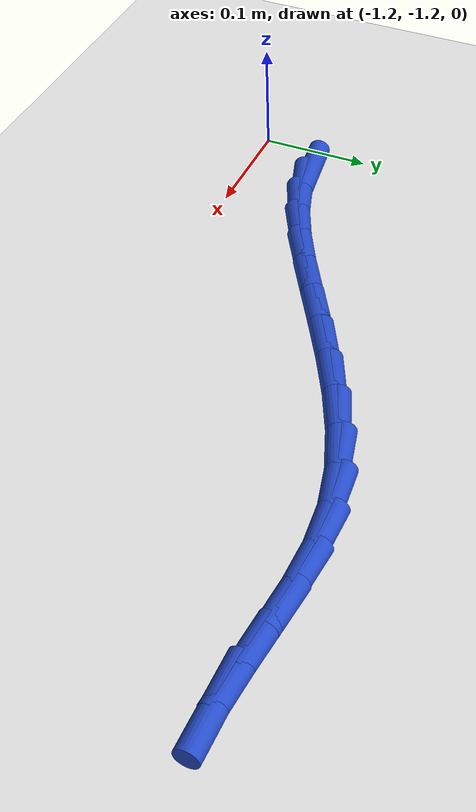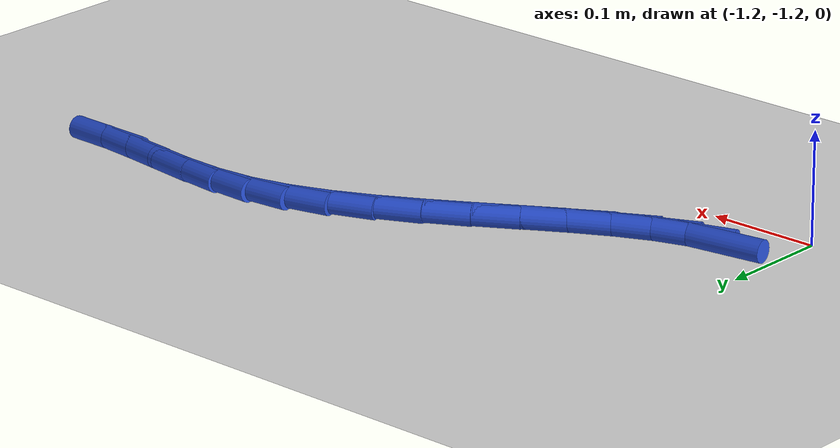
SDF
<sdf version="1.6">
 <world name="default">
  <model name="ground_plane">
   <static>1</static>
   <link name="link">
    <collision name="collision">
     <geometry><plane><normal>0 0 1</normal><size>100 100</size></plane></geometry>
     <surface><friction><ode><mu>100</mu><mu2>50</mu2></ode></friction></surface>
    </collision>
    <visual name="visual">
     <cast_shadows>0</cast_shadows>
     <geometry><plane><normal>0 0 1</normal><size>100 100</size></plane></geometry>
     <material>
      <script><uri>file://media/materials/scripts/gazebo.material</uri><name>Gazebo/WhiteGlow</name></script>
     </material>
    </visual>
   </link>
  </model>
  <model name="line">
   <link name="link_149">
    <pose>-1.1542933924334093 -1.1378271474269215 0.01 0 1.57 0.1392775598056084</pose>
    <collision name="collision">
     <geometry><cylinder><radius>0.01</radius><length>0.08</length></cylinder></geometry>
    </collision>
    <visual name="visual">
     <material>
      <script><name>Gazebo/Blue</name><uri>file://media/materials/scripts/gazebo.material</uri></script>
     </material>
     <geometry><cylinder><radius>0.01</radius><length>0.08</length></cylinder></geometry>
    </visual>
   </link>
   <link name="link_150">
    <pose>-1.1259524986673595 -1.1338541740549366 0.01 0 1.57 0.3168340715386531</pose>
    <collision name="collision">
     <geometry><cylinder><radius>0.01</radius><length>0.08</length></cylinder></geometry>
    </collision>
    <visual name="visual">
     <material>
      <script><name>Gazebo/Blue</name><uri>file://media/materials/scripts/gazebo.material</uri></script>
     </material>
     <geometry><cylinder><radius>0.01</radius><length>0.08</length></cylinder></geometry>
    </visual>
   </link>
   <link name="link_151">
    <pose>-1.096124837135707 -1.1240742962422663 0.01 0 1.57 0.4329502543316481</pose>
    <collision name="collision">
     <geometry><cylinder><radius>0.01</radius><length>0.08</length></cylinder></geometry>
    </collision>
    <visual name="visual">
     <material>
      <script><name>Gazebo/Blue</name><uri>file://media/materials/scripts/gazebo.material</uri></script>
     </material>
     <geometry><cylinder><radius>0.01</radius><length>0.08</length></cylinder></geometry>
    </visual>
   </link>
   <link name="link_152">
    <pose>-1.0649669193592286 -1.1096732106272074 0.01 0 1.57 0.5041289269134812</pose>
    <collision name="collision">
     <geometry><cylinder><radius>0.01</radius><length>0.08</length></cylinder></geometry>
    </collision>
    <visual name="visual">
     <material>
      <script><name>Gazebo/Blue</name><uri>file://media/materials/scripts/gazebo.material</uri></script>
     </material>
     <geometry><cylinder><radius>0.01</radius><length>0.08</length></cylinder></geometry>
    </visual>
   </link>
   <link name="link_153">
    <pose>-1.0326352568587005 -1.0918366138480582 0.01 0 1.57 0.5421171334897387</pose>
    <collision name="collision">
     <geometry><cylinder><radius>0.01</radius><length>0.08</length></cylinder></geometry>
    </collision>
    <visual name="visual">
     <material>
      <script><name>Gazebo/Blue</name><uri>file://media/materials/scripts/gazebo.material</uri></script>
     </material>
     <geometry><cylinder><radius>0.01</radius><length>0.08</length></cylinder></geometry>
    </visual>
   </link>
   <link name="link_154">
    <pose>-0.9992863611549005 -1.0717502025431171 0.01 0 1.57 0.5537398132104734</pose>
    <collision name="collision">
     <geometry><cylinder><radius>0.01</radius><length>0.08</length></cylinder></geometry>
    </collision>
    <visual name="visual">
     <material>
      <script><name>Gazebo/Blue</name><uri>file://media/materials/scripts/gazebo.material</uri></script>
     </material>
     <geometry><cylinder><radius>0.01</radius><length>0.08</length></cylinder></geometry>
    </visual>
   </link>
   <link name="link_155">
    <pose>-0.9650767437686038 -1.050599673350681 0.01 0 1.57 0.5421163612613489</pose>
    <collision name="collision">
     <geometry><cylinder><radius>0.01</radius><length>0.08</length></cylinder></geometry>
    </collision>
    <visual name="visual">
     <material>
      <script><name>Gazebo/Blue</name><uri>file://media/materials/scripts/gazebo.material</uri></script>
     </material>
     <geometry><cylinder><radius>0.01</radius><length>0.08</length></cylinder></geometry>
    </visual>
   </link>
   <link name="link_156">
    <pose>-0.9301629162205884 -1.0295707229090487 0.01 0 1.57 0.5075471916009003</pose>
    <collision name="collision">
     <geometry><cylinder><radius>0.01</radius><length>0.08</length></cylinder></geometry>
    </collision>
    <visual name="visual">
     <material>
      <script><name>Gazebo/Blue</name><uri>file://media/materials/scripts/gazebo.material</uri></script>
     </material>
     <geometry><cylinder><radius>0.01</radius><length>0.08</length></cylinder></geometry>
    </visual>
   </link>
   <link name="link_157">
    <pose>-0.8947013900316302 -1.0098490478565174 0.01 0 1.57 0.44795967462035574</pose>
    <collision name="collision">
     <geometry><cylinder><radius>0.01</radius><length>0.08</length></cylinder></geometry>
    </collision>
    <visual name="visual">
     <material>
      <script><name>Gazebo/Blue</name><uri>file://media/materials/scripts/gazebo.material</uri></script>
     </material>
     <geometry><cylinder><radius>0.01</radius><length>0.08</length></cylinder></geometry>
    </visual>
   </link>
   <link name="link_158">
    <pose>-0.8588486767225062 -0.9926203448313855 0.01 0 1.57 0.3591900067554598</pose>
    <collision name="collision">
     <geometry><cylinder><radius>0.01</radius><length>0.08</length></cylinder></geometry>
    </collision>
    <visual name="visual">
     <material>
      <script><name>Gazebo/Blue</name><uri>file://media/materials/scripts/gazebo.material</uri></script>
     </material>
     <geometry><cylinder><radius>0.01</radius><length>0.08</length></cylinder></geometry>
    </visual>
   </link>
   <link name="link_159">
    <pose>-0.8227612878139933 -0.9790703104719507 0.01 0 1.57 0.23570277533752754</pose>
    <collision name="collision">
     <geometry><cylinder><radius>0.01</radius><length>0.08</length></cylinder></geometry>
    </collision>
    <visual name="visual">
     <material>
      <script><name>Gazebo/Blue</name><uri>file://media/materials/scripts/gazebo.material</uri></script>
     </material>
     <geometry><cylinder><radius>0.01</radius><length>0.08</length></cylinder></geometry>
    </visual>
   </link>
   <link name="link_160">
    <pose>-0.7865957361136524 -0.9703845423982653 0.01 0 1.57 0.08868125264045294</pose>
    <collision name="collision">
     <geometry><cylinder><radius>0.01</radius><length>0.08</length></cylinder></geometry>
    </collision>
    <visual name="visual">
     <material>
      <script><name>Gazebo/Blue</name><uri>file://media/materials/scripts/gazebo.material</uri></script>
     </material>
     <geometry><cylinder><radius>0.01</radius><length>0.08</length></cylinder></geometry>
    </visual>
   </link>
   <link name="link_161">
    <pose>-0.7505159692299795 -0.9671765294023831 0.01 0 1.57 -0.026940031784061767</pose>
    <collision name="collision">
     <geometry><cylinder><radius>0.01</radius><length>0.08</length></cylinder></geometry>
    </collision>
    <visual name="visual">
     <material>
      <script><name>Gazebo/Blue</name><uri>file://media/materials/scripts/gazebo.material</uri></script>
     </material>
     <geometry><cylinder><radius>0.01</radius><length>0.08</length></cylinder></geometry>
    </visual>
   </link>
   <link name="link_162">
    <pose>-0.7147108652952874 -0.968141353463655 0.01 0 1.57 -0.09679460157863941</pose>
    <collision name="collision">
     <geometry><cylinder><radius>0.01</radius><length>0.08</length></cylinder></geometry>
    </collision>
    <visual name="visual">
     <material>
      <script><name>Gazebo/Blue</name><uri>file://media/materials/scripts/gazebo.material</uri></script>
     </material>
     <geometry><cylinder><radius>0.01</radius><length>0.08</length></cylinder></geometry>
    </visual>
   </link>
   <link name="link_163">
    <pose>-0.6793745221039266 -0.9715724429384671 0.01 0 1.57 -0.12028077831823027</pose>
    <collision name="collision">
     <geometry><cylinder><radius>0.01</radius><length>0.08</length></cylinder></geometry>
    </collision>
    <visual name="visual">
     <material>
      <script><name>Gazebo/Blue</name><uri>file://media/materials/scripts/gazebo.material</uri></script>
     </material>
     <geometry><cylinder><radius>0.01</radius><length>0.08</length></cylinder></geometry>
    </visual>
   </link>
   <link name="link_164">
    <pose>-0.6447010374502482 -0.9757632261832055 0.01 0 1.57 -0.09563400086842615</pose>
    <collision name="collision">
     <geometry><cylinder><radius>0.01</radius><length>0.08</length></cylinder></geometry>
    </collision>
    <visual name="visual">
     <material>
      <script><name>Gazebo/Blue</name><uri>file://media/materials/scripts/gazebo.material</uri></script>
     </material>
     <geometry><cylinder><radius>0.01</radius><length>0.08</length></cylinder></geometry>
    </visual>
   </link>
   <link name="link_165">
    <pose>-0.6108845091286035 -0.9790071315542573 0.01 0 1.57 -0.018018721380251596</pose>
    <collision name="collision">
     <geometry><cylinder><radius>0.01</radius><length>0.08</length></cylinder></geometry>
    </collision>
    <visual name="visual">
     <material>
      <script><name>Gazebo/Blue</name><uri>file://media/materials/scripts/gazebo.material</uri></script>
     </material>
     <geometry><cylinder><radius>0.01</radius><length>0.08</length></cylinder></geometry>
    </visual>
   </link>
  </model>
 </world>
</sdf>
